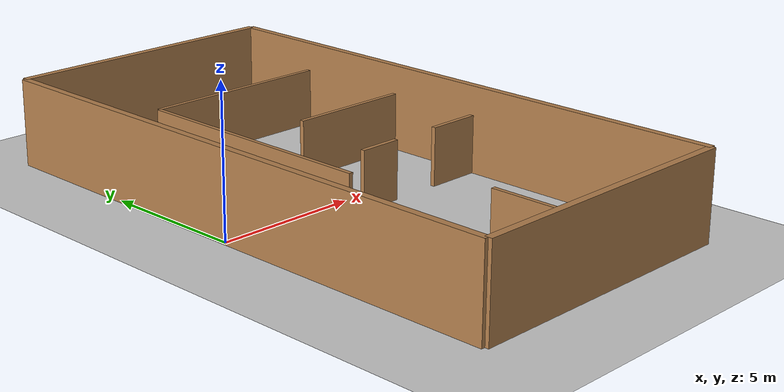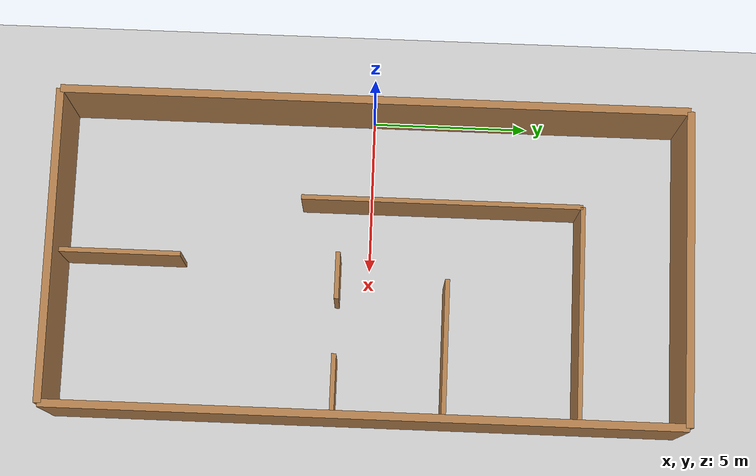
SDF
<sdf version="1.7">
 <world name="default">
  <plugin name="gazebo_ros_state" filename="libgazebo_ros_state.so">
   <ros><namespace>/test</namespace><argument>model_states:=model_states_demo</argument></ros>
   <update_rate>1.0</update_rate>
  </plugin>
  <model name="ground_plane">
   <static>1</static>
   <link name="link">
    <collision name="collision">
     <geometry><plane><normal>0 0 1</normal><size>100 100</size></plane></geometry>
     <surface>
      <contact><collide_bitmask>65535</collide_bitmask></contact>
      <friction><ode><mu>100</mu><mu2>50</mu2></ode></friction>
     </surface>
    </collision>
    <visual name="visual">
     <cast_shadows>0</cast_shadows>
     <geometry><plane><normal>0 0 1</normal><size>100 100</size></plane></geometry>
     <material>
      <script><uri>file://media/materials/scripts/gazebo.material</uri><name>Gazebo/Grey</name></script>
     </material>
    </visual>
   </link>
  </model>
  <light name="sun" type="directional">
   <cast_shadows>0</cast_shadows>
   <pose>0 0 10 0 -0 0</pose>
   <diffuse>0.8 0.8 0.8 1</diffuse>
   <specular>0.2 0.2 0.2 1</specular>
   <attenuation>
    <range>1000</range>
    <constant>0.9</constant>
    <linear>0.01</linear>
    <quadratic>0.001</quadratic>
   </attenuation>
   <direction>-0.5 0.1 -0.9</direction>
   <spot><inner_angle>0</inner_angle><outer_angle>0</outer_angle><falloff>0</falloff></spot>
  </light>
  <scene><shadows>0</shadows><ambient>0.4 0.4 0.4 1</ambient><background>0.7 0.7 0.7 1</background></scene>
  <physics type="ode">
   <real_time_update_rate>1000</real_time_update_rate>
   <max_step_size>0.001</max_step_size>
   <real_time_factor>1</real_time_factor>
   <ode>
    <solver>
     <type>quick</type>
     <iters>150</iters>
     <precon_iters>0</precon_iters>
     <sor>1.4</sor>
     <use_dynamic_moi_rescaling>1</use_dynamic_moi_rescaling>
    </solver>
    <constraints>
     <cfm>1e-05</cfm>
     <erp>0.2</erp>
     <contact_max_correcting_vel>2000</contact_max_correcting_vel>
     <contact_surface_layer>0.01</contact_surface_layer>
    </constraints>
   </ode>
  </physics>
  <gravity>0 0 -9.8</gravity>
  <magnetic_field>6e-06 2.3e-05 -4.2e-05</magnetic_field>
  <atmosphere type="adiabatic"/>
  <spherical_coordinates>
   <surface_model>EARTH_WGS84</surface_model>
   <latitude_deg>0</latitude_deg>
   <longitude_deg>0</longitude_deg>
   <elevation>0</elevation>
   <heading_deg>0</heading_deg>
  </spherical_coordinates>
  <model name="room_square">
   <static>1</static>
   <link name="Wall_1">
    <collision name="Wall_1_Collision"><geometry><box><size>20 0.25 3</size></box></geometry></collision>
    <visual name="Wall_1_Visual">
     <geometry><box><size>20 0.25 3</size></box></geometry>
     <material>
      <script><uri>file://media/materials/scripts/gazebo.material</uri><name>Gazebo/Wood</name></script>
      <ambient>1 1 1 1</ambient>
     </material>
    </visual>
    <pose>0 0 1.5 0 -0 1.5708</pose>
   </link>
   <link name="Wall_2">
    <collision name="Wall_2_Collision"><geometry><box><size>10 0.25 3</size></box></geometry></collision>
    <visual name="Wall_2_Visual">
     <geometry><box><size>10 0.25 3</size></box></geometry>
     <material>
      <script><uri>file://media/materials/scripts/gazebo.material</uri><name>Gazebo/Wood</name></script>
      <ambient>1 1 1 1</ambient>
     </material>
    </visual>
    <pose>5 10 1.5 0 -0 0</pose>
   </link>
   <link name="Wall_3">
    <collision name="Wall_3_Collision"><geometry><box><size>20 0.25 3</size></box></geometry></collision>
    <visual name="Wall_3_Visual">
     <geometry><box><size>20 0.25 3</size></box></geometry>
     <material>
      <script><uri>file://media/materials/scripts/gazebo.material</uri><name>Gazebo/Wood</name></script>
      <ambient>1 1 1 1</ambient>
     </material>
    </visual>
    <pose>10 0 1.5 0 0 -1.5708</pose>
   </link>
   <link name="Wall_4">
    <collision name="Wall_4_Collision"><geometry><box><size>10 0.25 3</size></box></geometry></collision>
    <visual name="Wall_4_Visual">
     <geometry><box><size>10 0.25 3</size></box></geometry>
     <material>
      <script><uri>file://media/materials/scripts/gazebo.material</uri><name>Gazebo/Wood</name></script>
      <ambient>1 1 1 1</ambient>
     </material>
    </visual>
    <pose>5 -10 1.5 0 -0 3.14159</pose>
   </link>
   <static>1</static>
  </model>
  <model name="inner_wall_1">
   <static>1</static>
   <link name="inner_wall_1">
    <collision name="inner_wall_1_collision"><geometry><box><size>4.0 0.15 2</size></box></geometry></collision>
    <visual name="inner_wall_1_visual">
     <geometry><box><size>4.0 0.15 2</size></box></geometry>
     <material>
      <script><uri>file://media/materials/scripts/gazebo.material</uri><name>Gazebo/Wood</name></script>
      <ambient>1 1 1 1</ambient>
     </material>
    </visual>
    <pose>0 0 1.0 0 0 -1.5708</pose>
   </link>
   <pose>5 -8 0 0 -0 0</pose>
  </model>
  <model name="inner_wall_2">
   <static>1</static>
   <link name="inner_wall_2">
    <collision name="inner_wall_2_collision"><geometry><box><size>2 0.15 2</size></box></geometry></collision>
    <visual name="inner_wall_2_visual">
     <geometry><box><size>2 0.15 2</size></box></geometry>
     <material>
      <script><uri>file://media/materials/scripts/gazebo.material</uri><name>Gazebo/Wood</name></script>
      <ambient>1 1 1 1</ambient>
     </material>
    </visual>
    <pose>0 0 1.0 0 0 0</pose>
   </link>
   <pose>9 -1 0 0 -0 0</pose>
  </model>
  <model name="inner_wall_3">
   <static>1</static>
   <link name="inner_wall_3">
    <collision name="inner_wall_3_collision"><geometry><box><size>1.5 0.15 2</size></box></geometry></collision>
    <visual name="inner_wall_3_visual">
     <geometry><box><size>1.5 0.15 2</size></box></geometry>
     <material>
      <script><uri>file://media/materials/scripts/gazebo.material</uri><name>Gazebo/Wood</name></script>
      <ambient>1 1 1 1</ambient>
     </material>
    </visual>
    <pose>0 0 1.0 0 0 0</pose>
   </link>
   <pose>5.5 -1 0 0 -0 0</pose>
  </model>
  <model name="inner_wall_4">
   <static>1</static>
   <link name="inner_wall_4">
    <collision name="inner_wall_4_collision"><geometry><box><size>9 0.15 2</size></box></geometry></collision>
    <visual name="inner_wall_4_visual">
     <geometry><box><size>9 0.15 2</size></box></geometry>
     <material>
      <script><uri>file://media/materials/scripts/gazebo.material</uri><name>Gazebo/Wood</name></script>
      <ambient>1 1 1 1</ambient>
     </material>
    </visual>
    <pose>0 0 1.0 0 0 0</pose>
   </link>
   <pose>3 2.25 0 0 -0 -1.5708</pose>
  </model>
  <model name="inner_wall_5">
   <static>1</static>
   <link name="inner_wall_5">
    <collision name="inner_wall_5_collision"><geometry><box><size>4.5 0.15 2</size></box></geometry></collision>
    <visual name="inner_wall_5_visual">
     <geometry><box><size>4.5 0.15 2</size></box></geometry>
     <material>
      <script><uri>file://media/materials/scripts/gazebo.material</uri><name>Gazebo/Wood</name></script>
      <ambient>1 1 1 1</ambient>
     </material>
    </visual>
    <pose>0.0 0.0 1.0 0 -0 0</pose>
   </link>
   <pose>7.75 2.5 0 0 -0 0</pose>
  </model>
  <model name="inner_wall_6">
   <static>1</static>
   <link name="inner_wall_6">
    <collision name="inner_wall_6_collision"><geometry><box><size>7 0.15 2</size></box></geometry></collision>
    <visual name="inner_wall_6_visual">
     <geometry><box><size>7 0.15 2</size></box></geometry>
     <material>
      <script><uri>file://media/materials/scripts/gazebo.material</uri><name>Gazebo/Wood</name></script>
      <ambient>1 1 1 1</ambient>
     </material>
    </visual>
    <pose>0.0 0.0 1.0 0 -0 0</pose>
   </link>
   <pose>6.5 6.75 0 0 -0 0</pose>
  </model>
 </world>
</sdf>
